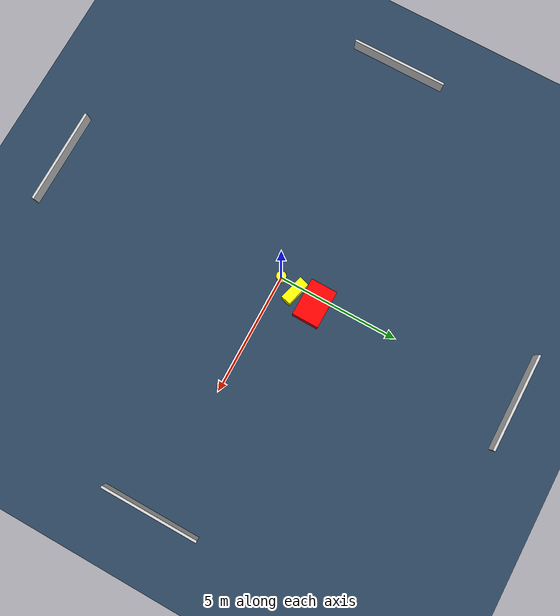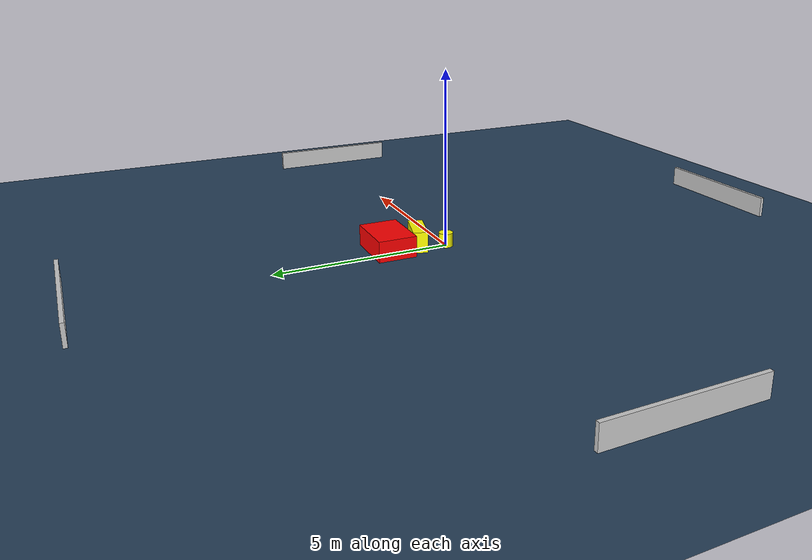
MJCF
<?xml version="1.0" ?>
<mujoco model="generated_environment">
  <option timestep="0.01" integrator="RK4" cone="elliptic"/>
  <default>
    <geom density="1"/>
  </default>
  <asset>
    <texture builtin="gradient" height="3072" name="skybox" rgb1="0.3 0.5 0.7" rgb2="0 0 0" type="skybox" width="512"/>
    <texture builtin="checker" height="300" name="groundplane" rgb1="0.2 0.3 0.4" rgb2="0.1 0.2 0.3" type="2d" width="300"/>
    <material name="groundplane" reflectance="0.2" texrepeat="5 5" texture="groundplane"/>
  </asset>
  <worldbody>
    <light dir="0 0 -1" directional="true" pos="0 0 1.5"/>
    <geom condim="3" friction="0.5 0.005 0.001" material="groundplane" name="floor" pos="0 0 0" size="0 0 0.05" type="plane"/>
    <body name="walls">
      <geom name="wall_1" condim="4" pos="-10.0 0.0 0.3" rgba="0.800000011920929 0.800000011920929 0.800000011920929 1.0" size="0.05 2.0 0.3" type="box"/>
      <geom name="wall_2" condim="4" pos="10.0 0.0 0.3" rgba="0.800000011920929 0.800000011920929 0.800000011920929 1.0" size="0.05 2.0 0.3" type="box"/>
      <geom name="wall_3" condim="4" pos="0.0 -10.0 0.3" rgba="0.800000011920929 0.800000011920929 0.800000011920929 1.0" size="2.0 0.05 0.3" type="box"/>
      <geom name="wall_4" condim="4" pos="0.0 10.0 0.3" rgba="0.800000011920929 0.800000011920929 0.800000011920929 1.0" size="2.0 0.05 0.3" type="box"/>
    </body>
    <body name="robot">
      <joint name="joint_x" type="slide" pos="0 0 0" axis="1 0 0"/>
      <joint name="joint_y" type="slide" pos="0 0 0" axis="0 1 0"/>
      <geom name="robot" type="cylinder" pos="0.0 0.0 0.2" size="0.2 0.2 0.0" mass="5.0" friction="1.0 0.005 0.0001" condim="4" rgba="1.0 1.0 0.0 1.0"/>
    </body>
    <body name="obstacle_1_movable">
      <geom name="obstacle_1_movable" condim="4" pos="0.2766275204396388 0.7465186834313287 0.3" euler="0 0 344.83744653604197" friction="0.0 0.005 0.001" rgba="1.0 1.0 0.0 1.0" size="0.5264899191841794 0.2078421967339796 0.3" type="box" mass="0.1"/>
      <joint type="free"/>
    </body>
    <body name="obstacle_2_static">
      <geom name="obstacle_2_static" condim="4" pos="0.3393774366195218 1.637531308580141 0.3" euler="0 0 179.53582715512047" friction="0.0 0.005 0.001" rgba="1.0 0.0 0.0 1.0" size="0.7723942492135023 0.5484069779787875 0.3" type="box"/>
    </body>
  </worldbody>
  <actuator>
    <motor name="actuator_x" joint="joint_x" gear="1" ctrlrange="-1 1"/>
    <motor name="actuator_y" joint="joint_y" gear="1" ctrlrange="-1 1"/>
  </actuator>
</mujoco>
